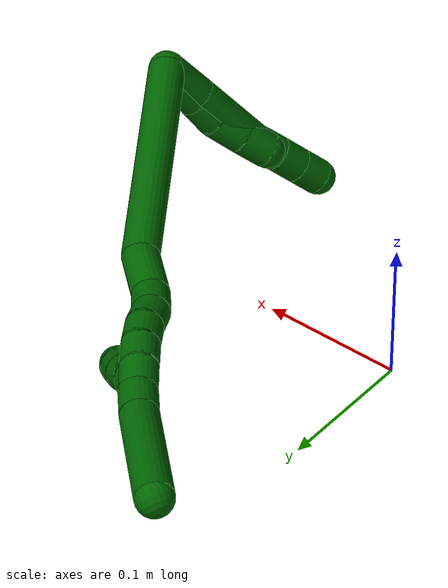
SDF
<sdf version="1.7">
 <world name="default">
  <model name="6">
   <static>0</static>
   <link name="6">
    <collision name="collision-cylinder-e_1_2_8">
     <pose>0.008156 -0.009314 -0.010416 2.41197 0.528342 1.23251</pose>
     <geometry><cylinder><radius>0.0125</radius><length>0.032358</length></cylinder></geometry>
     <surface>
      <friction><ode><mu>1.16</mu><mu2>1.16</mu2><slip1>0</slip1><slip2>0</slip2></ode></friction>
      <contact><ode><kp>1e+06</kp><kd>1</kd><max_vel>0</max_vel><min_depth>0.001</min_depth></ode></contact>
     </surface>
    </collision>
    <visual name="visual-cylinder-e_1_2_8">
     <pose>0.008156 -0.009314 -0.010416 2.41197 0.528342 1.23251</pose>
     <geometry><cylinder><radius>0.0125</radius><length>0.032358</length></cylinder></geometry>
     <material><ambient>0 0.392157 0.003922 1</ambient></material>
    </visual>
    <collision name="collision-cylinder-e_2_8_9">
     <pose>0.030159 -0.034821 -0.039682 2.4319 0.508389 1.22306</pose>
     <geometry><cylinder><radius>0.0125</radius><length>0.056895</length></cylinder></geometry>
     <surface>
      <friction><ode><mu>1.16</mu><mu2>1.16</mu2><slip1>0</slip1><slip2>0</slip2></ode></friction>
      <contact><ode><kp>1e+06</kp><kd>1</kd><max_vel>0</max_vel><min_depth>0.001</min_depth></ode></contact>
     </surface>
    </collision>
    <visual name="visual-cylinder-e_2_8_9">
     <pose>0.030159 -0.034821 -0.039682 2.4319 0.508389 1.22306</pose>
     <geometry><cylinder><radius>0.0125</radius><length>0.056895</length></cylinder></geometry>
     <material><ambient>0 0.392157 0.003922 1</ambient></material>
    </visual>
    <collision name="collision-cylinder-e_3_9_10">
     <pose>0.048587 -0.058121 -0.064354 2.25701 0.462471 0.92275</pose>
     <geometry><cylinder><radius>0.0125</radius><length>0.020533</length></cylinder></geometry>
     <surface>
      <friction><ode><mu>1.16</mu><mu2>1.16</mu2><slip1>0</slip1><slip2>0</slip2></ode></friction>
      <contact><ode><kp>1e+06</kp><kd>1</kd><max_vel>0</max_vel><min_depth>0.001</min_depth></ode></contact>
     </surface>
    </collision>
    <visual name="visual-cylinder-e_3_9_10">
     <pose>0.048587 -0.058121 -0.064354 2.25701 0.462471 0.92275</pose>
     <geometry><cylinder><radius>0.0125</radius><length>0.020533</length></cylinder></geometry>
     <material><ambient>0 0.392157 0.003922 1</ambient></material>
    </visual>
    <collision name="collision-cylinder-e_4_10_11">
     <pose>0.057916 -0.072051 -0.075833 2.26316 0.491879 0.981395</pose>
     <geometry><cylinder><radius>0.0125</radius><length>0.020108</length></cylinder></geometry>
     <surface>
      <friction><ode><mu>1.16</mu><mu2>1.16</mu2><slip1>0</slip1><slip2>0</slip2></ode></friction>
      <contact><ode><kp>1e+06</kp><kd>1</kd><max_vel>0</max_vel><min_depth>0.001</min_depth></ode></contact>
     </surface>
    </collision>
    <visual name="visual-cylinder-e_4_10_11">
     <pose>0.057916 -0.072051 -0.075833 2.26316 0.491879 0.981395</pose>
     <geometry><cylinder><radius>0.0125</radius><length>0.020108</length></cylinder></geometry>
     <material><ambient>0 0.392157 0.003922 1</ambient></material>
    </visual>
    <collision name="collision-cylinder-e_5_11_6">
     <pose>0.067347 -0.085708 -0.087183 2.26527 0.484535 0.970706</pose>
     <geometry><cylinder><radius>0.0125</radius><length>0.020105</length></cylinder></geometry>
     <surface>
      <friction><ode><mu>1.16</mu><mu2>1.16</mu2><slip1>0</slip1><slip2>0</slip2></ode></friction>
      <contact><ode><kp>1e+06</kp><kd>1</kd><max_vel>0</max_vel><min_depth>0.001</min_depth></ode></contact>
     </surface>
    </collision>
    <visual name="visual-cylinder-e_5_11_6">
     <pose>0.067347 -0.085708 -0.087183 2.26527 0.484535 0.970706</pose>
     <geometry><cylinder><radius>0.0125</radius><length>0.020105</length></cylinder></geometry>
     <material><ambient>0 0.392157 0.003922 1</ambient></material>
    </visual>
    <collision name="collision-cylinder-e_1_2_12">
     <pose>0.009609 -0.008043 -0.011447 2.52909 0.601814 1.55206</pose>
     <geometry><cylinder><radius>0.0125</radius><length>0.033945</length></cylinder></geometry>
     <surface>
      <friction><ode><mu>1.16</mu><mu2>1.16</mu2><slip1>0</slip1><slip2>0</slip2></ode></friction>
      <contact><ode><kp>1e+06</kp><kd>1</kd><max_vel>0</max_vel><min_depth>0.001</min_depth></ode></contact>
     </surface>
    </collision>
    <visual name="visual-cylinder-e_1_2_12">
     <pose>0.009609 -0.008043 -0.011447 2.52909 0.601814 1.55206</pose>
     <geometry><cylinder><radius>0.0125</radius><length>0.033945</length></cylinder></geometry>
     <material><ambient>0 0.392157 0.003922 1</ambient></material>
    </visual>
    <collision name="collision-cylinder-e_2_12_13">
     <pose>0.024556 -0.021216 -0.030395 2.5418 0.531159 1.44291</pose>
     <geometry><cylinder><radius>0.0125</radius><length>0.021078</length></cylinder></geometry>
     <surface>
      <friction><ode><mu>1.16</mu><mu2>1.16</mu2><slip1>0</slip1><slip2>0</slip2></ode></friction>
      <contact><ode><kp>1e+06</kp><kd>1</kd><max_vel>0</max_vel><min_depth>0.001</min_depth></ode></contact>
     </surface>
    </collision>
    <visual name="visual-cylinder-e_2_12_13">
     <pose>0.024556 -0.021216 -0.030395 2.5418 0.531159 1.44291</pose>
     <geometry><cylinder><radius>0.0125</radius><length>0.021078</length></cylinder></geometry>
     <material><ambient>0 0.392157 0.003922 1</ambient></material>
    </visual>
    <collision name="collision-cylinder-e_3_13_14">
     <pose>0.03352 -0.034019 -0.045559 2.35551 0.32266 0.748079</pose>
     <geometry><cylinder><radius>0.0125</radius><length>0.02287</length></cylinder></geometry>
     <surface>
      <friction><ode><mu>1.16</mu><mu2>1.16</mu2><slip1>0</slip1><slip2>0</slip2></ode></friction>
      <contact><ode><kp>1e+06</kp><kd>1</kd><max_vel>0</max_vel><min_depth>0.001</min_depth></ode></contact>
     </surface>
    </collision>
    <visual name="visual-cylinder-e_3_13_14">
     <pose>0.03352 -0.034019 -0.045559 2.35551 0.32266 0.748079</pose>
     <geometry><cylinder><radius>0.0125</radius><length>0.02287</length></cylinder></geometry>
     <material><ambient>0 0.392157 0.003922 1</ambient></material>
    </visual>
    <collision name="collision-cylinder-e_4_14_5">
     <pose>0.04074 -0.049302 -0.06039 2.32627 0.331105 0.738315</pose>
     <geometry><cylinder><radius>0.0125</radius><length>0.022107</length></cylinder></geometry>
     <surface>
      <friction><ode><mu>1.16</mu><mu2>1.16</mu2><slip1>0</slip1><slip2>0</slip2></ode></friction>
      <contact><ode><kp>1e+06</kp><kd>1</kd><max_vel>0</max_vel><min_depth>0.001</min_depth></ode></contact>
     </surface>
    </collision>
    <visual name="visual-cylinder-e_4_14_5">
     <pose>0.04074 -0.049302 -0.06039 2.32627 0.331105 0.738315</pose>
     <geometry><cylinder><radius>0.0125</radius><length>0.022107</length></cylinder></geometry>
     <material><ambient>0 0.392157 0.003922 1</ambient></material>
    </visual>
    <collision name="collision-cylinder-e_1_2_15">
     <pose>-0.032877 0.042838 -0.060709 -2.52711 -0.416584 1.17527</pose>
     <geometry><cylinder><radius>0.0125</radius><length>0.1625</length></cylinder></geometry>
     <surface>
      <friction><ode><mu>1.16</mu><mu2>1.16</mu2><slip1>0</slip1><slip2>0</slip2></ode></friction>
      <contact><ode><kp>1e+06</kp><kd>1</kd><max_vel>0</max_vel><min_depth>0.001</min_depth></ode></contact>
     </surface>
    </collision>
    <visual name="visual-cylinder-e_1_2_15">
     <pose>-0.032877 0.042838 -0.060709 -2.52711 -0.416584 1.17527</pose>
     <geometry><cylinder><radius>0.0125</radius><length>0.1625</length></cylinder></geometry>
     <material><ambient>0 0.392157 0.003922 1</ambient></material>
    </visual>
    <collision name="collision-cylinder-e_2_15_16">
     <pose>-0.075838 0.090269 -0.135453 -2.82524 -0.599145 2.18819</pose>
     <geometry><cylinder><radius>0.0125</radius><length>0.035763</length></cylinder></geometry>
     <surface>
      <friction><ode><mu>1.16</mu><mu2>1.16</mu2><slip1>0</slip1><slip2>0</slip2></ode></friction>
      <contact><ode><kp>1e+06</kp><kd>1</kd><max_vel>0</max_vel><min_depth>0.001</min_depth></ode></contact>
     </surface>
    </collision>
    <visual name="visual-cylinder-e_2_15_16">
     <pose>-0.075838 0.090269 -0.135453 -2.82524 -0.599145 2.18819</pose>
     <geometry><cylinder><radius>0.0125</radius><length>0.035763</length></cylinder></geometry>
     <material><ambient>0 0.392157 0.003922 1</ambient></material>
    </visual>
    <collision name="collision-cylinder-e_3_16_17">
     <pose>-0.092961 0.098877 -0.155568 -2.55812 -0.768139 1.86349</pose>
     <geometry><cylinder><radius>0.0125</radius><length>0.020261</length></cylinder></geometry>
     <surface>
      <friction><ode><mu>1.16</mu><mu2>1.16</mu2><slip1>0</slip1><slip2>0</slip2></ode></friction>
      <contact><ode><kp>1e+06</kp><kd>1</kd><max_vel>0</max_vel><min_depth>0.001</min_depth></ode></contact>
     </surface>
    </collision>
    <visual name="visual-cylinder-e_3_16_17">
     <pose>-0.092961 0.098877 -0.155568 -2.55812 -0.768139 1.86349</pose>
     <geometry><cylinder><radius>0.0125</radius><length>0.020261</length></cylinder></geometry>
     <material><ambient>0 0.392157 0.003922 1</ambient></material>
    </visual>
    <collision name="collision-cylinder-e_4_17_18">
     <pose>-0.107429 0.108766 -0.166038 -2.21255 -0.791918 1.39056</pose>
     <geometry><cylinder><radius>0.0125</radius><length>0.020879</length></cylinder></geometry>
     <surface>
      <friction><ode><mu>1.16</mu><mu2>1.16</mu2><slip1>0</slip1><slip2>0</slip2></ode></friction>
      <contact><ode><kp>1e+06</kp><kd>1</kd><max_vel>0</max_vel><min_depth>0.001</min_depth></ode></contact>
     </surface>
    </collision>
    <visual name="visual-cylinder-e_4_17_18">
     <pose>-0.107429 0.108766 -0.166038 -2.21255 -0.791918 1.39056</pose>
     <geometry><cylinder><radius>0.0125</radius><length>0.020879</length></cylinder></geometry>
     <material><ambient>0 0.392157 0.003922 1</ambient></material>
    </visual>
    <collision name="collision-cylinder-e_5_18_19">
     <pose>-0.121528 0.119877 -0.176221 -2.40657 -0.706822 1.52808</pose>
     <geometry><cylinder><radius>0.0125</radius><length>0.020538</length></cylinder></geometry>
     <surface>
      <friction><ode><mu>1.16</mu><mu2>1.16</mu2><slip1>0</slip1><slip2>0</slip2></ode></friction>
      <contact><ode><kp>1e+06</kp><kd>1</kd><max_vel>0</max_vel><min_depth>0.001</min_depth></ode></contact>
     </surface>
    </collision>
    <visual name="visual-cylinder-e_5_18_19">
     <pose>-0.121528 0.119877 -0.176221 -2.40657 -0.706822 1.52808</pose>
     <geometry><cylinder><radius>0.0125</radius><length>0.020538</length></cylinder></geometry>
     <material><ambient>0 0.392157 0.003922 1</ambient></material>
    </visual>
    <collision name="collision-cylinder-e_6_19_20">
     <pose>-0.134059 0.129755 -0.188697 -2.53463 -0.62425 1.60074</pose>
     <geometry><cylinder><radius>0.0125</radius><length>0.020057</length></cylinder></geometry>
     <surface>
      <friction><ode><mu>1.16</mu><mu2>1.16</mu2><slip1>0</slip1><slip2>0</slip2></ode></friction>
      <contact><ode><kp>1e+06</kp><kd>1</kd><max_vel>0</max_vel><min_depth>0.001</min_depth></ode></contact>
     </surface>
    </collision>
    <visual name="visual-cylinder-e_6_19_20">
     <pose>-0.134059 0.129755 -0.188697 -2.53463 -0.62425 1.60074</pose>
     <geometry><cylinder><radius>0.0125</radius><length>0.020057</length></cylinder></geometry>
     <material><ambient>0 0.392157 0.003922 1</ambient></material>
    </visual>
    <collision name="collision-cylinder-e_7_20_1">
     <pose>-0.144754 0.138982 -0.202839 -2.59029 -0.504471 1.47789</pose>
     <geometry><cylinder><radius>0.0125</radius><length>0.020001</length></cylinder></geometry>
     <surface>
      <friction><ode><mu>1.16</mu><mu2>1.16</mu2><slip1>0</slip1><slip2>0</slip2></ode></friction>
      <contact><ode><kp>1e+06</kp><kd>1</kd><max_vel>0</max_vel><min_depth>0.001</min_depth></ode></contact>
     </surface>
    </collision>
    <visual name="visual-cylinder-e_7_20_1">
     <pose>-0.144754 0.138982 -0.202839 -2.59029 -0.504471 1.47789</pose>
     <geometry><cylinder><radius>0.0125</radius><length>0.020001</length></cylinder></geometry>
     <material><ambient>0 0.392157 0.003922 1</ambient></material>
    </visual>
    <collision name="collision-cylinder-e_1_1_21">
     <pose>-0.156727 0.147912 -0.217788 -2.616 -0.689468 1.85561</pose>
     <geometry><cylinder><radius>0.0125</radius><length>0.022447</length></cylinder></geometry>
     <surface>
      <friction><ode><mu>1.16</mu><mu2>1.16</mu2><slip1>0</slip1><slip2>0</slip2></ode></friction>
      <contact><ode><kp>1e+06</kp><kd>1</kd><max_vel>0</max_vel><min_depth>0.001</min_depth></ode></contact>
     </surface>
    </collision>
    <visual name="visual-cylinder-e_1_1_21">
     <pose>-0.156727 0.147912 -0.217788 -2.616 -0.689468 1.85561</pose>
     <geometry><cylinder><radius>0.0125</radius><length>0.022447</length></cylinder></geometry>
     <material><ambient>0 0.392157 0.003922 1</ambient></material>
    </visual>
    <collision name="collision-cylinder-e_2_21_4">
     <pose>-0.189269 0.16425 -0.252009 -2.71986 -0.71429 2.09998</pose>
     <geometry><cylinder><radius>0.0125</radius><length>0.077553</length></cylinder></geometry>
     <surface>
      <friction><ode><mu>1.16</mu><mu2>1.16</mu2><slip1>0</slip1><slip2>0</slip2></ode></friction>
      <contact><ode><kp>1e+06</kp><kd>1</kd><max_vel>0</max_vel><min_depth>0.001</min_depth></ode></contact>
     </surface>
    </collision>
    <visual name="visual-cylinder-e_2_21_4">
     <pose>-0.189269 0.16425 -0.252009 -2.71986 -0.71429 2.09998</pose>
     <geometry><cylinder><radius>0.0125</radius><length>0.077553</length></cylinder></geometry>
     <material><ambient>0 0.392157 0.003922 1</ambient></material>
    </visual>
    <collision name="collision-cylinder-e_1_1_22">
     <pose>-0.141258 0.141009 -0.20539 0.480624 0.984419 0.261306</pose>
     <geometry><cylinder><radius>0.0125</radius><length>0.02</length></cylinder></geometry>
     <surface>
      <friction><ode><mu>1.16</mu><mu2>1.16</mu2><slip1>0</slip1><slip2>0</slip2></ode></friction>
      <contact><ode><kp>1e+06</kp><kd>1</kd><max_vel>0</max_vel><min_depth>0.001</min_depth></ode></contact>
     </surface>
    </collision>
    <visual name="visual-cylinder-e_1_1_22">
     <pose>-0.141258 0.141009 -0.20539 0.480624 0.984419 0.261306</pose>
     <geometry><cylinder><radius>0.0125</radius><length>0.02</length></cylinder></geometry>
     <material><ambient>0 0.392157 0.003922 1</ambient></material>
    </visual>
    <collision name="collision-cylinder-e_2_22_23">
     <pose>-0.123575 0.135645 -0.198329 0.915957 1.20927 0.656551</pose>
     <geometry><cylinder><radius>0.0125</radius><length>0.02</length></cylinder></geometry>
     <surface>
      <friction><ode><mu>1.16</mu><mu2>1.16</mu2><slip1>0</slip1><slip2>0</slip2></ode></friction>
      <contact><ode><kp>1e+06</kp><kd>1</kd><max_vel>0</max_vel><min_depth>0.001</min_depth></ode></contact>
     </surface>
    </collision>
    <visual name="visual-cylinder-e_2_22_23">
     <pose>-0.123575 0.135645 -0.198329 0.915957 1.20927 0.656551</pose>
     <geometry><cylinder><radius>0.0125</radius><length>0.02</length></cylinder></geometry>
     <material><ambient>0 0.392157 0.003922 1</ambient></material>
    </visual>
    <collision name="collision-cylinder-e_3_23_24">
     <pose>-0.104591 0.132574 -0.193495 0.099046 1.29809 0.075172</pose>
     <geometry><cylinder><radius>0.0125</radius><length>0.02</length></cylinder></geometry>
     <surface>
      <friction><ode><mu>1.16</mu><mu2>1.16</mu2><slip1>0</slip1><slip2>0</slip2></ode></friction>
      <contact><ode><kp>1e+06</kp><kd>1</kd><max_vel>0</max_vel><min_depth>0.001</min_depth></ode></contact>
     </surface>
    </collision>
    <visual name="visual-cylinder-e_3_23_24">
     <pose>-0.104591 0.132574 -0.193495 0.099046 1.29809 0.075172</pose>
     <geometry><cylinder><radius>0.0125</radius><length>0.02</length></cylinder></geometry>
     <material><ambient>0 0.392157 0.003922 1</ambient></material>
    </visual>
    <collision name="collision-cylinder-e_4_24_25">
     <pose>-0.08569 0.130645 -0.187454 0.459236 1.18645 0.312621</pose>
     <geometry><cylinder><radius>0.0125</radius><length>0.02</length></cylinder></geometry>
     <surface>
      <friction><ode><mu>1.16</mu><mu2>1.16</mu2><slip1>0</slip1><slip2>0</slip2></ode></friction>
      <contact><ode><kp>1e+06</kp><kd>1</kd><max_vel>0</max_vel><min_depth>0.001</min_depth></ode></contact>
     </surface>
    </collision>
    <visual name="visual-cylinder-e_4_24_25">
     <pose>-0.08569 0.130645 -0.187454 0.459236 1.18645 0.312621</pose>
     <geometry><cylinder><radius>0.0125</radius><length>0.02</length></cylinder></geometry>
     <material><ambient>0 0.392157 0.003922 1</ambient></material>
    </visual>
    <collision name="collision-cylinder-e_5_25_3">
     <pose>-0.066858 0.126724 -0.18223 0.88132 1.27362 0.671185</pose>
     <geometry><cylinder><radius>0.0125</radius><length>0.02</length></cylinder></geometry>
     <surface>
      <friction><ode><mu>1.16</mu><mu2>1.16</mu2><slip1>0</slip1><slip2>0</slip2></ode></friction>
      <contact><ode><kp>1e+06</kp><kd>1</kd><max_vel>0</max_vel><min_depth>0.001</min_depth></ode></contact>
     </surface>
    </collision>
    <visual name="visual-cylinder-e_5_25_3">
     <pose>-0.066858 0.126724 -0.18223 0.88132 1.27362 0.671185</pose>
     <geometry><cylinder><radius>0.0125</radius><length>0.02</length></cylinder></geometry>
     <material><ambient>0 0.392157 0.003922 1</ambient></material>
    </visual>
    <collision name="collision-sphere-3">
     <pose>-0.057296 0.124465 -0.180367 0 -0 0</pose>
     <geometry><sphere><radius>0.0125</radius></sphere></geometry>
     <surface>
      <friction><ode><mu>1.16</mu><mu2>1.16</mu2><slip1>0</slip1><slip2>0</slip2></ode></friction>
      <contact><ode><kp>1e+06</kp><kd>1</kd><max_vel>0</max_vel><min_depth>0.001</min_depth></ode></contact>
     </surface>
    </collision>
    <visual name="visual-sphere-3">
     <pose>-0.057296 0.124465 -0.180367 0 -0 0</pose>
     <geometry><sphere><radius>0.0125</radius></sphere></geometry>
     <material><ambient>0 0.392157 0.003922 1</ambient></material>
    </visual>
    <collision name="collision-sphere-25">
     <pose>-0.07642 0.128983 -0.184093 0 -0 0</pose>
     <geometry><sphere><radius>0.0125</radius></sphere></geometry>
     <surface>
      <friction><ode><mu>1.16</mu><mu2>1.16</mu2><slip1>0</slip1><slip2>0</slip2></ode></friction>
      <contact><ode><kp>1e+06</kp><kd>1</kd><max_vel>0</max_vel><min_depth>0.001</min_depth></ode></contact>
     </surface>
    </collision>
    <visual name="visual-sphere-25">
     <pose>-0.07642 0.128983 -0.184093 0 -0 0</pose>
     <geometry><sphere><radius>0.0125</radius></sphere></geometry>
     <material><ambient>0 0.392157 0.003922 1</ambient></material>
    </visual>
    <collision name="collision-sphere-24">
     <pose>-0.094961 0.132307 -0.190815 0 -0 0</pose>
     <geometry><sphere><radius>0.0125</radius></sphere></geometry>
     <surface>
      <friction><ode><mu>1.16</mu><mu2>1.16</mu2><slip1>0</slip1><slip2>0</slip2></ode></friction>
      <contact><ode><kp>1e+06</kp><kd>1</kd><max_vel>0</max_vel><min_depth>0.001</min_depth></ode></contact>
     </surface>
    </collision>
    <visual name="visual-sphere-24">
     <pose>-0.094961 0.132307 -0.190815 0 -0 0</pose>
     <geometry><sphere><radius>0.0125</radius></sphere></geometry>
     <material><ambient>0 0.392157 0.003922 1</ambient></material>
    </visual>
    <collision name="collision-sphere-23">
     <pose>-0.114222 0.13284 -0.196175 0 -0 0</pose>
     <geometry><sphere><radius>0.0125</radius></sphere></geometry>
     <surface>
      <friction><ode><mu>1.16</mu><mu2>1.16</mu2><slip1>0</slip1><slip2>0</slip2></ode></friction>
      <contact><ode><kp>1e+06</kp><kd>1</kd><max_vel>0</max_vel><min_depth>0.001</min_depth></ode></contact>
     </surface>
    </collision>
    <visual name="visual-sphere-23">
     <pose>-0.114222 0.13284 -0.196175 0 -0 0</pose>
     <geometry><sphere><radius>0.0125</radius></sphere></geometry>
     <material><ambient>0 0.392157 0.003922 1</ambient></material>
    </visual>
    <collision name="collision-sphere-22">
     <pose>-0.132929 0.138451 -0.200483 0 -0 0</pose>
     <geometry><sphere><radius>0.0125</radius></sphere></geometry>
     <surface>
      <friction><ode><mu>1.16</mu><mu2>1.16</mu2><slip1>0</slip1><slip2>0</slip2></ode></friction>
      <contact><ode><kp>1e+06</kp><kd>1</kd><max_vel>0</max_vel><min_depth>0.001</min_depth></ode></contact>
     </surface>
    </collision>
    <visual name="visual-sphere-22">
     <pose>-0.132929 0.138451 -0.200483 0 -0 0</pose>
     <geometry><sphere><radius>0.0125</radius></sphere></geometry>
     <material><ambient>0 0.392157 0.003922 1</ambient></material>
    </visual>
    <collision name="collision-sphere-4">
     <pose>-0.21467 0.176243 -0.27874 0 -0 0</pose>
     <geometry><sphere><radius>0.0125</radius></sphere></geometry>
     <surface>
      <friction><ode><mu>1.16</mu><mu2>1.16</mu2><slip1>0</slip1><slip2>0</slip2></ode></friction>
      <contact><ode><kp>1e+06</kp><kd>1</kd><max_vel>0</max_vel><min_depth>0.001</min_depth></ode></contact>
     </surface>
    </collision>
    <visual name="visual-sphere-4">
     <pose>-0.21467 0.176243 -0.27874 0 -0 0</pose>
     <geometry><sphere><radius>0.0125</radius></sphere></geometry>
     <material><ambient>0 0.392157 0.003922 1</ambient></material>
    </visual>
    <collision name="collision-sphere-21">
     <pose>-0.163867 0.152257 -0.225279 0 -0 0</pose>
     <geometry><sphere><radius>0.0125</radius></sphere></geometry>
     <surface>
      <friction><ode><mu>1.16</mu><mu2>1.16</mu2><slip1>0</slip1><slip2>0</slip2></ode></friction>
      <contact><ode><kp>1e+06</kp><kd>1</kd><max_vel>0</max_vel><min_depth>0.001</min_depth></ode></contact>
     </surface>
    </collision>
    <visual name="visual-sphere-21">
     <pose>-0.163867 0.152257 -0.225279 0 -0 0</pose>
     <geometry><sphere><radius>0.0125</radius></sphere></geometry>
     <material><ambient>0 0.392157 0.003922 1</ambient></material>
    </visual>
    <collision name="collision-sphere-1">
     <pose>-0.149588 0.143567 -0.210296 0 -0 0</pose>
     <geometry><sphere><radius>0.0125</radius></sphere></geometry>
     <surface>
      <friction><ode><mu>1.16</mu><mu2>1.16</mu2><slip1>0</slip1><slip2>0</slip2></ode></friction>
      <contact><ode><kp>1e+06</kp><kd>1</kd><max_vel>0</max_vel><min_depth>0.001</min_depth></ode></contact>
     </surface>
    </collision>
    <visual name="visual-sphere-1">
     <pose>-0.149588 0.143567 -0.210296 0 -0 0</pose>
     <geometry><sphere><radius>0.0125</radius></sphere></geometry>
     <material><ambient>0 0.392157 0.003922 1</ambient></material>
    </visual>
    <collision name="collision-sphere-6">
     <pose>0.07203 -0.092543 -0.092876 0 -0 0</pose>
     <geometry><sphere><radius>0.0125</radius></sphere></geometry>
     <surface>
      <friction><ode><mu>1.16</mu><mu2>1.16</mu2><slip1>0</slip1><slip2>0</slip2></ode></friction>
      <contact><ode><kp>1e+06</kp><kd>1</kd><max_vel>0</max_vel><min_depth>0.001</min_depth></ode></contact>
     </surface>
    </collision>
    <visual name="visual-sphere-6">
     <pose>0.07203 -0.092543 -0.092876 0 -0 0</pose>
     <geometry><sphere><radius>0.0125</radius></sphere></geometry>
     <material><ambient>0 0.392157 0.003922 1</ambient></material>
    </visual>
    <collision name="collision-sphere-11">
     <pose>0.062665 -0.078872 -0.08149 0 -0 0</pose>
     <geometry><sphere><radius>0.0125</radius></sphere></geometry>
     <surface>
      <friction><ode><mu>1.16</mu><mu2>1.16</mu2><slip1>0</slip1><slip2>0</slip2></ode></friction>
      <contact><ode><kp>1e+06</kp><kd>1</kd><max_vel>0</max_vel><min_depth>0.001</min_depth></ode></contact>
     </surface>
    </collision>
    <visual name="visual-sphere-11">
     <pose>0.062665 -0.078872 -0.08149 0 -0 0</pose>
     <geometry><sphere><radius>0.0125</radius></sphere></geometry>
     <material><ambient>0 0.392157 0.003922 1</ambient></material>
    </visual>
    <collision name="collision-sphere-10">
     <pose>0.053168 -0.065229 -0.070176 0 -0 0</pose>
     <geometry><sphere><radius>0.0125</radius></sphere></geometry>
     <surface>
      <friction><ode><mu>1.16</mu><mu2>1.16</mu2><slip1>0</slip1><slip2>0</slip2></ode></friction>
      <contact><ode><kp>1e+06</kp><kd>1</kd><max_vel>0</max_vel><min_depth>0.001</min_depth></ode></contact>
     </surface>
    </collision>
    <visual name="visual-sphere-10">
     <pose>0.053168 -0.065229 -0.070176 0 -0 0</pose>
     <geometry><sphere><radius>0.0125</radius></sphere></geometry>
     <material><ambient>0 0.392157 0.003922 1</ambient></material>
    </visual>
    <collision name="collision-sphere-9">
     <pose>0.044007 -0.051013 -0.058532 0 -0 0</pose>
     <geometry><sphere><radius>0.0125</radius></sphere></geometry>
     <surface>
      <friction><ode><mu>1.16</mu><mu2>1.16</mu2><slip1>0</slip1><slip2>0</slip2></ode></friction>
      <contact><ode><kp>1e+06</kp><kd>1</kd><max_vel>0</max_vel><min_depth>0.001</min_depth></ode></contact>
     </surface>
    </collision>
    <visual name="visual-sphere-9">
     <pose>0.044007 -0.051013 -0.058532 0 -0 0</pose>
     <geometry><sphere><radius>0.0125</radius></sphere></geometry>
     <material><ambient>0 0.392157 0.003922 1</ambient></material>
    </visual>
    <collision name="collision-sphere-2">
     <geometry><sphere><radius>0.0125</radius></sphere></geometry>
     <surface>
      <friction><ode><mu>1.16</mu><mu2>1.16</mu2><slip1>0</slip1><slip2>0</slip2></ode></friction>
      <contact><ode><kp>1e+06</kp><kd>1</kd><max_vel>0</max_vel><min_depth>0.001</min_depth></ode></contact>
     </surface>
    </collision>
    <visual name="visual-sphere-2">
     <geometry><sphere><radius>0.0125</radius></sphere></geometry>
     <material><ambient>0 0.392157 0.003922 1</ambient></material>
    </visual>
    <collision name="collision-sphere-19">
     <pose>-0.128197 0.125114 -0.182014 0 -0 0</pose>
     <geometry><sphere><radius>0.0125</radius></sphere></geometry>
     <surface>
      <friction><ode><mu>1.16</mu><mu2>1.16</mu2><slip1>0</slip1><slip2>0</slip2></ode></friction>
      <contact><ode><kp>1e+06</kp><kd>1</kd><max_vel>0</max_vel><min_depth>0.001</min_depth></ode></contact>
     </surface>
    </collision>
    <visual name="visual-sphere-19">
     <pose>-0.128197 0.125114 -0.182014 0 -0 0</pose>
     <geometry><sphere><radius>0.0125</radius></sphere></geometry>
     <material><ambient>0 0.392157 0.003922 1</ambient></material>
    </visual>
    <collision name="collision-sphere-8">
     <pose>0.016312 -0.018628 -0.020832 0 -0 0</pose>
     <geometry><sphere><radius>0.0125</radius></sphere></geometry>
     <surface>
      <friction><ode><mu>1.16</mu><mu2>1.16</mu2><slip1>0</slip1><slip2>0</slip2></ode></friction>
      <contact><ode><kp>1e+06</kp><kd>1</kd><max_vel>0</max_vel><min_depth>0.001</min_depth></ode></contact>
     </surface>
    </collision>
    <visual name="visual-sphere-8">
     <pose>0.016312 -0.018628 -0.020832 0 -0 0</pose>
     <geometry><sphere><radius>0.0125</radius></sphere></geometry>
     <material><ambient>0 0.392157 0.003922 1</ambient></material>
    </visual>
    <collision name="collision-sphere-12">
     <pose>0.019218 -0.016087 -0.022895 0 -0 0</pose>
     <geometry><sphere><radius>0.0125</radius></sphere></geometry>
     <surface>
      <friction><ode><mu>1.16</mu><mu2>1.16</mu2><slip1>0</slip1><slip2>0</slip2></ode></friction>
      <contact><ode><kp>1e+06</kp><kd>1</kd><max_vel>0</max_vel><min_depth>0.001</min_depth></ode></contact>
     </surface>
    </collision>
    <visual name="visual-sphere-12">
     <pose>0.019218 -0.016087 -0.022895 0 -0 0</pose>
     <geometry><sphere><radius>0.0125</radius></sphere></geometry>
     <material><ambient>0 0.392157 0.003922 1</ambient></material>
    </visual>
    <collision name="collision-sphere-13">
     <pose>0.029894 -0.026346 -0.037896 0 -0 0</pose>
     <geometry><sphere><radius>0.0125</radius></sphere></geometry>
     <surface>
      <friction><ode><mu>1.16</mu><mu2>1.16</mu2><slip1>0</slip1><slip2>0</slip2></ode></friction>
      <contact><ode><kp>1e+06</kp><kd>1</kd><max_vel>0</max_vel><min_depth>0.001</min_depth></ode></contact>
     </surface>
    </collision>
    <visual name="visual-sphere-13">
     <pose>0.029894 -0.026346 -0.037896 0 -0 0</pose>
     <geometry><sphere><radius>0.0125</radius></sphere></geometry>
     <material><ambient>0 0.392157 0.003922 1</ambient></material>
    </visual>
    <collision name="collision-sphere-14">
     <pose>0.037146 -0.041693 -0.053223 0 -0 0</pose>
     <geometry><sphere><radius>0.0125</radius></sphere></geometry>
     <surface>
      <friction><ode><mu>1.16</mu><mu2>1.16</mu2><slip1>0</slip1><slip2>0</slip2></ode></friction>
      <contact><ode><kp>1e+06</kp><kd>1</kd><max_vel>0</max_vel><min_depth>0.001</min_depth></ode></contact>
     </surface>
    </collision>
    <visual name="visual-sphere-14">
     <pose>0.037146 -0.041693 -0.053223 0 -0 0</pose>
     <geometry><sphere><radius>0.0125</radius></sphere></geometry>
     <material><ambient>0 0.392157 0.003922 1</ambient></material>
    </visual>
    <collision name="collision-sphere-5">
     <pose>0.044333 -0.056912 -0.067557 0 -0 0</pose>
     <geometry><sphere><radius>0.0125</radius></sphere></geometry>
     <surface>
      <friction><ode><mu>1.16</mu><mu2>1.16</mu2><slip1>0</slip1><slip2>0</slip2></ode></friction>
      <contact><ode><kp>1e+06</kp><kd>1</kd><max_vel>0</max_vel><min_depth>0.001</min_depth></ode></contact>
     </surface>
    </collision>
    <visual name="visual-sphere-5">
     <pose>0.044333 -0.056912 -0.067557 0 -0 0</pose>
     <geometry><sphere><radius>0.0125</radius></sphere></geometry>
     <material><ambient>0 0.392157 0.003922 1</ambient></material>
    </visual>
    <collision name="collision-sphere-15">
     <pose>-0.065754 0.085675 -0.121419 0 -0 0</pose>
     <geometry><sphere><radius>0.0125</radius></sphere></geometry>
     <surface>
      <friction><ode><mu>1.16</mu><mu2>1.16</mu2><slip1>0</slip1><slip2>0</slip2></ode></friction>
      <contact><ode><kp>1e+06</kp><kd>1</kd><max_vel>0</max_vel><min_depth>0.001</min_depth></ode></contact>
     </surface>
    </collision>
    <visual name="visual-sphere-15">
     <pose>-0.065754 0.085675 -0.121419 0 -0 0</pose>
     <geometry><sphere><radius>0.0125</radius></sphere></geometry>
     <material><ambient>0 0.392157 0.003922 1</ambient></material>
    </visual>
    <collision name="collision-sphere-16">
     <pose>-0.085922 0.094863 -0.149487 0 -0 0</pose>
     <geometry><sphere><radius>0.0125</radius></sphere></geometry>
     <surface>
      <friction><ode><mu>1.16</mu><mu2>1.16</mu2><slip1>0</slip1><slip2>0</slip2></ode></friction>
      <contact><ode><kp>1e+06</kp><kd>1</kd><max_vel>0</max_vel><min_depth>0.001</min_depth></ode></contact>
     </surface>
    </collision>
    <visual name="visual-sphere-16">
     <pose>-0.085922 0.094863 -0.149487 0 -0 0</pose>
     <geometry><sphere><radius>0.0125</radius></sphere></geometry>
     <material><ambient>0 0.392157 0.003922 1</ambient></material>
    </visual>
    <collision name="collision-sphere-17">
     <pose>-0.1 0.102891 -0.161648 0 -0 0</pose>
     <geometry><sphere><radius>0.0125</radius></sphere></geometry>
     <surface>
      <friction><ode><mu>1.16</mu><mu2>1.16</mu2><slip1>0</slip1><slip2>0</slip2></ode></friction>
      <contact><ode><kp>1e+06</kp><kd>1</kd><max_vel>0</max_vel><min_depth>0.001</min_depth></ode></contact>
     </surface>
    </collision>
    <visual name="visual-sphere-17">
     <pose>-0.1 0.102891 -0.161648 0 -0 0</pose>
     <geometry><sphere><radius>0.0125</radius></sphere></geometry>
     <material><ambient>0 0.392157 0.003922 1</ambient></material>
    </visual>
    <collision name="collision-sphere-18">
     <pose>-0.114859 0.11464 -0.170428 0 -0 0</pose>
     <geometry><sphere><radius>0.0125</radius></sphere></geometry>
     <surface>
      <friction><ode><mu>1.16</mu><mu2>1.16</mu2><slip1>0</slip1><slip2>0</slip2></ode></friction>
      <contact><ode><kp>1e+06</kp><kd>1</kd><max_vel>0</max_vel><min_depth>0.001</min_depth></ode></contact>
     </surface>
    </collision>
    <visual name="visual-sphere-18">
     <pose>-0.114859 0.11464 -0.170428 0 -0 0</pose>
     <geometry><sphere><radius>0.0125</radius></sphere></geometry>
     <material><ambient>0 0.392157 0.003922 1</ambient></material>
    </visual>
    <collision name="collision-sphere-20">
     <pose>-0.13992 0.134396 -0.195381 0 -0 0</pose>
     <geometry><sphere><radius>0.0125</radius></sphere></geometry>
     <surface>
      <friction><ode><mu>1.16</mu><mu2>1.16</mu2><slip1>0</slip1><slip2>0</slip2></ode></friction>
      <contact><ode><kp>1e+06</kp><kd>1</kd><max_vel>0</max_vel><min_depth>0.001</min_depth></ode></contact>
     </surface>
    </collision>
    <visual name="visual-sphere-20">
     <pose>-0.13992 0.134396 -0.195381 0 -0 0</pose>
     <geometry><sphere><radius>0.0125</radius></sphere></geometry>
     <material><ambient>0 0.392157 0.003922 1</ambient></material>
    </visual>
    <inertial>
     <pose>-0.05452 0.056616 -0.116213 0 -0 0</pose>
     <mass>0.75</mass>
     <inertia>
      <ixx>0.000497</ixx>
      <ixy>0</ixy>
      <ixz>0</ixz>
      <iyy>0.000383</iyy>
      <iyz>0</iyz>
      <izz>-6.1e-05</izz>
     </inertia>
    </inertial>
   </link>
   <pose>0.210601 -0.024234 0.134693 -0.131474 0.891395 -0.538038</pose>
  </model>
 </world>
</sdf>
